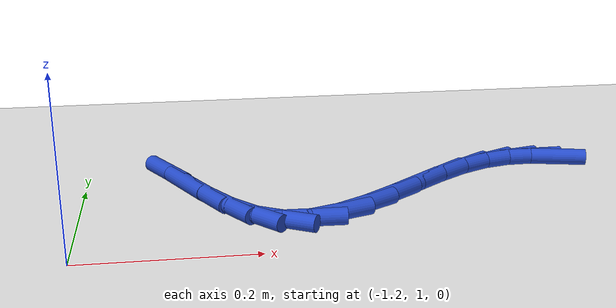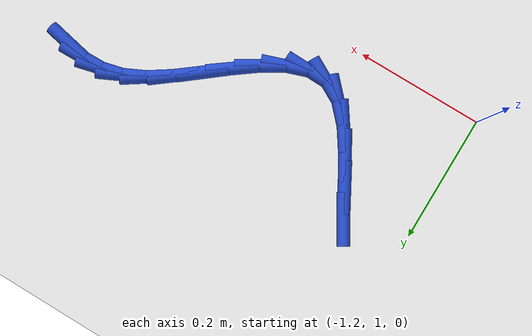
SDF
<sdf version="1.6">
 <world name="default">
  <model name="ground_plane">
   <static>1</static>
   <link name="link">
    <collision name="collision">
     <geometry><plane><normal>0 0 1</normal><size>100 100</size></plane></geometry>
     <surface><friction><ode><mu>100</mu><mu2>50</mu2></ode></friction></surface>
    </collision>
    <visual name="visual">
     <cast_shadows>0</cast_shadows>
     <geometry><plane><normal>0 0 1</normal><size>100 100</size></plane></geometry>
     <material>
      <script><uri>file://media/materials/scripts/gazebo.material</uri><name>Gazebo/WhiteGlow</name></script>
     </material>
    </visual>
   </link>
  </model>
  <model name="line">
   <link name="link_34">
    <pose>-0.6181928345012214 1.2186828850978058 0.01 0 1.57 -0.2047220033296333</pose>
    <collision name="collision">
     <geometry><cylinder><radius>0.01</radius><length>0.08</length></cylinder></geometry>
    </collision>
    <visual name="visual">
     <material>
      <script><name>Gazebo/Blue</name><uri>file://media/materials/scripts/gazebo.material</uri></script>
     </material>
     <geometry><cylinder><radius>0.01</radius><length>0.08</length></cylinder></geometry>
    </visual>
   </link>
   <link name="link_35">
    <pose>-0.647053508569051 1.2246752504944314 0.01 0 1.57 0.023267815428800014</pose>
    <collision name="collision">
     <geometry><cylinder><radius>0.01</radius><length>0.08</length></cylinder></geometry>
    </collision>
    <visual name="visual">
     <material>
      <script><name>Gazebo/Blue</name><uri>file://media/materials/scripts/gazebo.material</uri></script>
     </material>
     <geometry><cylinder><radius>0.01</radius><length>0.08</length></cylinder></geometry>
    </visual>
   </link>
   <link name="link_36">
    <pose>-0.6770675051484656 1.2239767643057577 0.01 0 1.57 0.24790822838531043</pose>
    <collision name="collision">
     <geometry><cylinder><radius>0.01</radius><length>0.08</length></cylinder></geometry>
    </collision>
    <visual name="visual">
     <material>
      <script><name>Gazebo/Blue</name><uri>file://media/materials/scripts/gazebo.material</uri></script>
     </material>
     <geometry><cylinder><radius>0.01</radius><length>0.08</length></cylinder></geometry>
    </visual>
   </link>
   <link name="link_37">
    <pose>-0.7083173235309033 1.2160669679832816 0.01 0 1.57 0.4476300454967805</pose>
    <collision name="collision">
     <geometry><cylinder><radius>0.01</radius><length>0.08</length></cylinder></geometry>
    </collision>
    <visual name="visual">
     <material>
      <script><name>Gazebo/Blue</name><uri>file://media/materials/scripts/gazebo.material</uri></script>
     </material>
     <geometry><cylinder><radius>0.01</radius><length>0.08</length></cylinder></geometry>
    </visual>
   </link>
   <link name="link_38">
    <pose>-0.7408847157441301 1.2004302088681684 0.01 0 1.57 0.5937727301959914</pose>
    <collision name="collision">
     <geometry><cylinder><radius>0.01</radius><length>0.08</length></cylinder></geometry>
    </collision>
    <visual name="visual">
     <material>
      <script><name>Gazebo/Blue</name><uri>file://media/materials/scripts/gazebo.material</uri></script>
     </material>
     <geometry><cylinder><radius>0.01</radius><length>0.08</length></cylinder></geometry>
    </visual>
   </link>
   <link name="link_39">
    <pose>-0.7746862752528323 1.1776130214034166 0.01 0 1.57 0.6639849081857786</pose>
    <collision name="collision">
     <geometry><cylinder><radius>0.01</radius><length>0.08</length></cylinder></geometry>
    </collision>
    <visual name="visual">
     <material>
      <script><name>Gazebo/Blue</name><uri>file://media/materials/scripts/gazebo.material</uri></script>
     </material>
     <geometry><cylinder><radius>0.01</radius><length>0.08</length></cylinder></geometry>
    </visual>
   </link>
   <link name="link_40">
    <pose>-0.8092667393685598 1.1505534648929159 0.01 0 1.57 0.6774342985067893</pose>
    <collision name="collision">
     <geometry><cylinder><radius>0.01</radius><length>0.08</length></cylinder></geometry>
    </collision>
    <visual name="visual">
     <material>
      <script><name>Gazebo/Blue</name><uri>file://media/materials/scripts/gazebo.material</uri></script>
     </material>
     <geometry><cylinder><radius>0.01</radius><length>0.08</length></cylinder></geometry>
    </visual>
   </link>
   <link name="link_41">
    <pose>-0.8441200050574201 1.1225165690269128 0.01 0 1.57 0.6395003853780693</pose>
    <collision name="collision">
     <geometry><cylinder><radius>0.01</radius><length>0.08</length></cylinder></geometry>
    </collision>
    <visual name="visual">
     <material>
      <script><name>Gazebo/Blue</name><uri>file://media/materials/scripts/gazebo.material</uri></script>
     </material>
     <geometry><cylinder><radius>0.01</radius><length>0.08</length></cylinder></geometry>
    </visual>
   </link>
   <link name="link_42">
    <pose>-0.878739969285522 1.096767363495655 0.01 0 1.57 0.5375530999956624</pose>
    <collision name="collision">
     <geometry><cylinder><radius>0.01</radius><length>0.08</length></cylinder></geometry>
    </collision>
    <visual name="visual">
     <material>
      <script><name>Gazebo/Blue</name><uri>file://media/materials/scripts/gazebo.material</uri></script>
     </material>
     <geometry><cylinder><radius>0.01</radius><length>0.08</length></cylinder></geometry>
    </visual>
   </link>
   <link name="link_43">
    <pose>-0.9126205290189733 1.0765708779893886 0.01 0 1.57 0.3354859799048498</pose>
    <collision name="collision">
     <geometry><cylinder><radius>0.01</radius><length>0.08</length></cylinder></geometry>
    </collision>
    <visual name="visual">
     <material>
      <script><name>Gazebo/Blue</name><uri>file://media/materials/scripts/gazebo.material</uri></script>
     </material>
     <geometry><cylinder><radius>0.01</radius><length>0.08</length></cylinder></geometry>
    </visual>
   </link>
   <link name="link_44">
    <pose>-0.945255581223882 1.0651921421983603 0.01 0 1.57 -0.0227928512047549</pose>
    <collision name="collision">
     <geometry><cylinder><radius>0.01</radius><length>0.08</length></cylinder></geometry>
    </collision>
    <visual name="visual">
     <material>
      <script><name>Gazebo/Blue</name><uri>file://media/materials/scripts/gazebo.material</uri></script>
     </material>
     <geometry><cylinder><radius>0.01</radius><length>0.08</length></cylinder></geometry>
    </visual>
   </link>
   <link name="link_45">
    <pose>-0.9761390228663565 1.0658961858128178 0.01 0 1.57 -0.49437761989659157</pose>
    <collision name="collision">
     <geometry><cylinder><radius>0.01</radius><length>0.08</length></cylinder></geometry>
    </collision>
    <visual name="visual">
     <material>
      <script><name>Gazebo/Blue</name><uri>file://media/materials/scripts/gazebo.material</uri></script>
     </material>
     <geometry><cylinder><radius>0.01</radius><length>0.08</length></cylinder></geometry>
    </visual>
   </link>
   <link name="link_46">
    <pose>-1.0048362805057915 1.0813647081422098 0.01 0 1.57 -0.8147684012159502</pose>
    <collision name="collision">
     <geometry><cylinder><radius>0.01</radius><length>0.08</length></cylinder></geometry>
    </collision>
    <visual name="visual">
     <material>
      <script><name>Gazebo/Blue</name><uri>file://media/materials/scripts/gazebo.material</uri></script>
     </material>
     <geometry><cylinder><radius>0.01</radius><length>0.08</length></cylinder></geometry>
    </visual>
   </link>
   <link name="link_47">
    <pose>-1.0314835109664342 1.1096250509436865 0.01 0 1.57 -0.974588011661386</pose>
    <collision name="collision">
     <geometry><cylinder><radius>0.01</radius><length>0.08</length></cylinder></geometry>
    </collision>
    <visual name="visual">
     <material>
      <script><name>Gazebo/Blue</name><uri>file://media/materials/scripts/gazebo.material</uri></script>
     </material>
     <geometry><cylinder><radius>0.01</radius><length>0.08</length></cylinder></geometry>
    </visual>
   </link>
   <link name="link_48">
    <pose>-1.0564901218416407 1.1464761709399847 0.01 0 1.57 -1.047657138661661</pose>
    <collision name="collision">
     <geometry><cylinder><radius>0.01</radius><length>0.08</length></cylinder></geometry>
    </collision>
    <visual name="visual">
     <material>
      <script><name>Gazebo/Blue</name><uri>file://media/materials/scripts/gazebo.material</uri></script>
     </material>
     <geometry><cylinder><radius>0.01</radius><length>0.08</length></cylinder></geometry>
    </visual>
   </link>
   <link name="link_49">
    <pose>-1.0802672309870938 1.1877030775080313 0.01 0 1.57 -1.0643339725079486</pose>
    <collision name="collision">
     <geometry><cylinder><radius>0.01</radius><length>0.08</length></cylinder></geometry>
    </collision>
    <visual name="visual">
     <material>
      <script><name>Gazebo/Blue</name><uri>file://media/materials/scripts/gazebo.material</uri></script>
     </material>
     <geometry><cylinder><radius>0.01</radius><length>0.08</length></cylinder></geometry>
    </visual>
   </link>
   <link name="link_50">
    <pose>-1.1032259562584747 1.2290907800247532 0.01 0 1.57 -1.027401186385243</pose>
    <collision name="collision">
     <geometry><cylinder><radius>0.01</radius><length>0.08</length></cylinder></geometry>
    </collision>
    <visual name="visual">
     <material>
      <script><name>Gazebo/Blue</name><uri>file://media/materials/scripts/gazebo.material</uri></script>
     </material>
     <geometry><cylinder><radius>0.01</radius><length>0.08</length></cylinder></geometry>
    </visual>
   </link>
  </model>
 </world>
</sdf>
